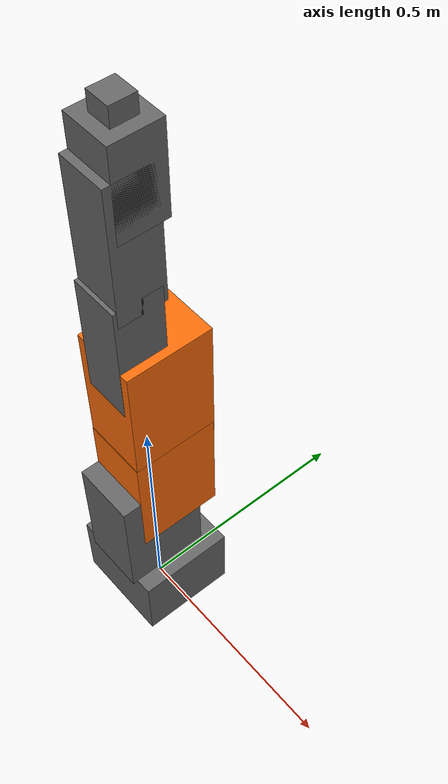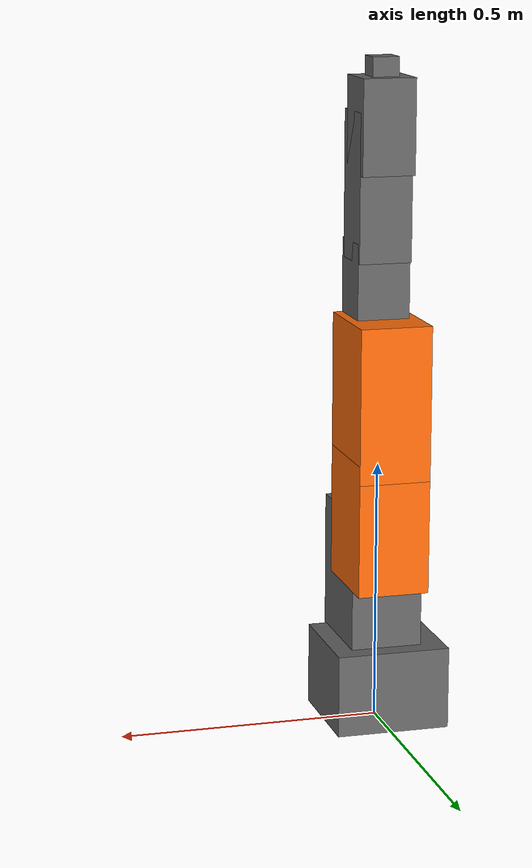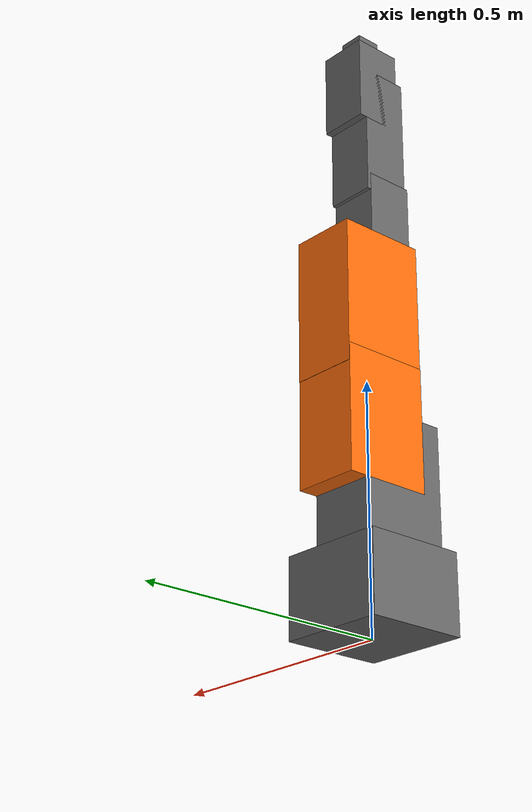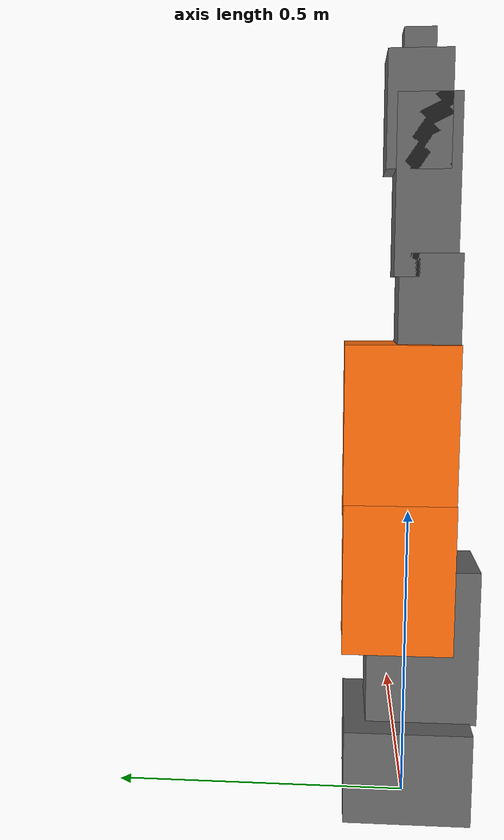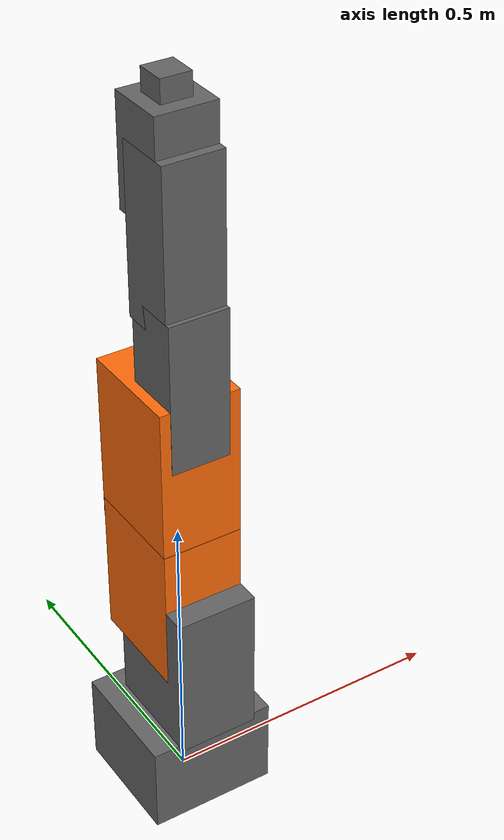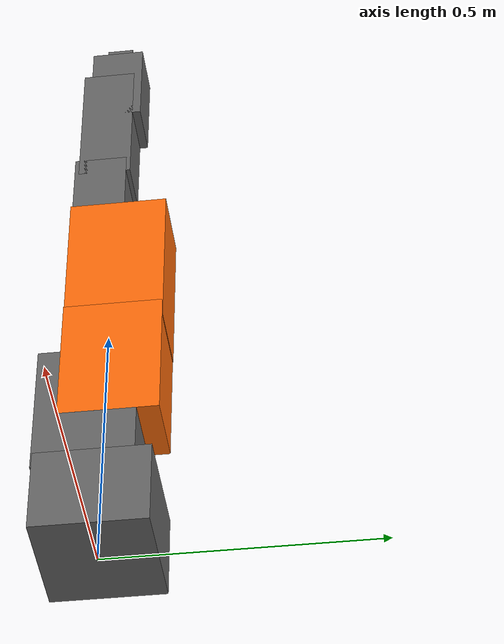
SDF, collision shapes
<?xml version="1.0"?>
<sdf version="1.7">
  <model name="iiwa7_twoDOF">
    <link name="iiwa_twoDOF_link_0">
      <inertial>
        <pose>-0.013 0 0.07 0 0 0</pose>
        <mass>3.863</mass>
        <inertia>
          <ixx>0.0141</ixx>
          <ixy>0</ixy>
          <ixz>0</ixz>
          <iyy>0.0171</iyy>
          <iyz>0</iyz>
          <izz>0.0178</izz>
        </inertia>
      </inertial>
      <visual name="iiwa_twoDOF_link_0_visual">
        <geometry>
          <mesh>
            <scale>1 1 1</scale>
            <uri>package://iris_environments/models/iiwa_description/iiwa7/link_0.obj</uri>
          </mesh>
        </geometry>
        <material>
          <diffuse>0.4 0.4 0.4 1.0</diffuse>
        </material>
      </visual>
      <collision name="iiwa_twoDOF_link_0_collision">
        <pose>-0.004563 0 0.07875 0 0 0</pose>
        <geometry>
          <box>
            <size>0.216874 0.207874 0.1575</size>
          </box>
        </geometry>
      </collision>
      <gravity>1</gravity>
    </link>
    <link name="iiwa_twoDOF_link_1">
      <pose>0 0 0.1575 0 0 0</pose>
      <inertial>
        <pose>0 -0.0347 0.113 0 0 0</pose>
        <mass>2.7025</mass>
        <inertia>
          <ixx>0.0171</ixx>
          <ixy>0</ixy>
          <ixz>0</ixz>
          <iyy>0.0163</iyy>
          <iyz>0</iyz>
          <izz>0.006</izz>
        </inertia>
      </inertial>
      <visual name="iiwa_twoDOF_link_1_visual">
        <geometry>
          <mesh>
            <scale>1 1 1</scale>
            <uri>package://iris_environments/models/iiwa_description/iiwa7/link_1.obj</uri>
          </mesh>
        </geometry>
        <material>
          <diffuse>0.4 0.4 0.4 1.0</diffuse>
        </material>
      </visual>
      <collision name="iiwa_twoDOF_link_1_collision">
        <pose>0 -0.023301 0.127997 0 0 0</pose>
        <geometry>
          <box>
            <size>0.13596 0.182584 0.260995</size>
          </box>
        </geometry>
      </collision>
      <gravity>1</gravity>
    </link>
    <joint name="iiwa_joint_1" type="fixed">
      <child>iiwa_twoDOF_link_1</child>
      <parent>iiwa_twoDOF_link_0</parent>
      <axis>
        <xyz expressed_in="__model__">0 0 1</xyz>
        <limit>
          <lower>-2.96706</lower>
          <upper>2.96706</upper>
          <effort>300</effort>
          <velocity>10</velocity>
        </limit>
        <dynamics>
          <damping>0.0</damping>
          <friction>0</friction>
          <spring_reference>0</spring_reference>
          <spring_stiffness>0</spring_stiffness>
        </dynamics>
      </axis>
    </joint>
    <link name="iiwa_twoDOF_link_2">
      <pose>0 0 0.3405 1.5708 0 -3.14159</pose>
      <inertial>
        <pose>0.000 0.0668 0.0344 0 0 0</pose>
        <mass>2.7258</mass>
        <inertia>
          <ixx>0.0170</ixx>
          <ixy>0</ixy>
          <ixz>0</ixz>
          <iyy>0.0162</iyy>
          <iyz>0</iyz>
          <izz>0.0061</izz>
        </inertia>
      </inertial>
      <visual name="iiwa_twoDOF_link_2_visual">
        <geometry>
          <mesh>
            <scale>1 1 1</scale>
            <uri>package://iris_environments/models/iiwa_description/iiwa7/link_2.obj</uri>
          </mesh>
        </geometry>
        <material>
          <diffuse>1.0 0.423529411765 0.0392156862745 1.0</diffuse>
        </material>
      </visual>
      <collision name="iiwa_twoDOF_link_2_collision">
        <pose>0 0.0580045 0.0173035 0 0 0</pose>
        <geometry>
          <box>
            <size>0.135988 0.251991 0.182605</size>
          </box>
        </geometry>
      </collision>
      <gravity>1</gravity>
    </link>
    <joint name="iiwa_joint_2" type="revolute">
      <child>iiwa_twoDOF_link_2</child>
      <parent>iiwa_twoDOF_link_1</parent>
      <axis>
        <xyz expressed_in="__model__">-0 1 0</xyz>
        <limit>
          <lower>-2.0944</lower>
          <upper>2.0944</upper>
          <effort>300</effort>
          <velocity>10</velocity>
        </limit>
        <dynamics>
          <damping>0</damping>
          <friction>0</friction>
          <spring_reference>0</spring_reference>
          <spring_stiffness>0</spring_stiffness>
        </dynamics>
      </axis>
    </joint>
    <link name="iiwa_twoDOF_link_3">
      <pose>0 0 0.5245 0 0 0</pose>
      <inertial>
        <pose>0 0.0296 0.1265 0 0 0</pose>
        <mass>3.175</mass>
        <inertia>
          <ixx>0.025</ixx>
          <ixy>0</ixy>
          <ixz>0</ixz>
          <iyy>0.0238</iyy>
          <iyz>0</iyz>
          <izz>0.0076</izz>
        </inertia>
      </inertial>
      <visual name="iiwa_twoDOF_link_3_visual">
        <geometry>
          <mesh>
            <scale>1 1 1</scale>
            <uri>package://iris_environments/models/iiwa_description/iiwa7/link_3.obj</uri>
          </mesh>
        </geometry>
        <material>
          <diffuse>1.0 0.423529411765 0.0392156862745 1.0</diffuse>
        </material>
      </visual>
      <collision name="iiwa_twoDOF_link_3_collision">
        <pose>0 0.0182965 0.11073 0 0 0</pose>
        <geometry>
          <box>
            <size>0.135987 0.182593 0.29346</size>
          </box>
        </geometry>
      </collision>
      <gravity>1</gravity>
    </link>
    <joint name="iiwa_joint_3" type="fixed">
      <child>iiwa_twoDOF_link_3</child>
      <parent>iiwa_twoDOF_link_2</parent>
      <axis>
        <xyz expressed_in="__model__">0 0 1</xyz>
        <limit>
          <lower>-2.96706</lower>
          <upper>2.96706</upper>
          <effort>300</effort>
          <velocity>10</velocity>
        </limit>
        <dynamics>
          <damping>0</damping>
          <friction>0</friction>
          <spring_reference>0</spring_reference>
          <spring_stiffness>0</spring_stiffness>
        </dynamics>
      </axis>
    </joint>
    <link name="iiwa_twoDOF_link_4">
      <pose>0 0 0.74 1.5708 0 0</pose>
      <inertial>
        <pose>0 0.067 0.034 0 0 0</pose>
        <mass>2.73</mass>
        <inertia>
          <ixx>0.017</ixx>
          <ixy>0</ixy>
          <ixz>0</ixz>
          <iyy>0.0162</iyy>
          <iyz>0</iyz>
          <izz>0.0061</izz>
        </inertia>
      </inertial>
      <visual name="iiwa_twoDOF_link_4_visual">
        <geometry>
          <mesh>
            <scale>1 1 1</scale>
            <uri>package://iris_environments/models/iiwa_description/iiwa7/link_4.obj</uri>
          </mesh>
        </geometry>
        <material>
          <diffuse>0.4 0.4 0.4 1.0</diffuse>
        </material>
      </visual>
      <collision name="iiwa_twoDOF_link_4_collision">
        <pose>0 0.0580045 0.0233035 0 0 0</pose>
        <geometry>
          <box>
            <size>0.1 0.251991 0.1</size>
          </box>
        </geometry>
      </collision>
      <gravity>1</gravity>
    </link>
    <joint name="iiwa_joint_4" type="revolute">
      <child>iiwa_twoDOF_link_4</child>
      <parent>iiwa_twoDOF_link_3</parent>
      <axis>
        <xyz expressed_in="__model__">0 -1 0</xyz>
        <limit>
          <lower>-2.0944</lower>
          <upper>2.0944</upper>
          <effort>300</effort>
          <velocity>10</velocity>
        </limit>
        <dynamics>
          <damping>0</damping>
          <friction>0</friction>
          <spring_reference>0</spring_reference>
          <spring_stiffness>0</spring_stiffness>
        </dynamics>
      </axis>
    </joint>
    <link name="iiwa_twoDOF_link_5">
      <pose>0 0 0.924 0 0 -3.14159</pose>
      <inertial>
        <pose>0.0001 0.021 0.076 0 0 0</pose>
        <mass>1.69</mass>
        <inertia>
          <ixx>0.01</ixx>
          <ixy>0</ixy>
          <ixz>0</ixz>
          <iyy>0.0087</iyy>
          <iyz>0</iyz>
          <izz>0.00449</izz>
        </inertia>
      </inertial>
      <visual name="iiwa_twoDOF_link_5_visual">
        <geometry>
          <mesh>
            <scale>1 1 1</scale>
            <uri>package://iris_environments/models/iiwa_description/iiwa7/link_5.obj</uri>
          </mesh>
        </geometry>
        <material>
          <diffuse>0.4 0.4 0.4 1.0</diffuse>
        </material>
      </visual>
      <collision name="iiwa_twoDOF_link_5_collision">
        <pose>0 0.015546 0.102458 0 0 0</pose>
        <geometry>
          <box>
            <size>0.10 0.10 0.276916</size>
          </box>
        </geometry>
      </collision>
      <gravity>1</gravity>
    </link>
    <joint name="iiwa_joint_5" type="fixed">
      <child>iiwa_twoDOF_link_5</child>
      <parent>iiwa_twoDOF_link_4</parent>
      <axis>
        <xyz expressed_in="__model__">0 0 1</xyz>
        <limit>
          <lower>-2.96706</lower>
          <upper>2.96706</upper>
          <effort>300</effort>
          <velocity>10</velocity>
        </limit>
        <dynamics>
          <damping>0</damping>
          <friction>0</friction>
          <spring_reference>0</spring_reference>
          <spring_stiffness>0</spring_stiffness>
        </dynamics>
      </axis>
    </joint>
    <link name="iiwa_twoDOF_link_6">
      <pose>0 0 1.1395 1.5708 0 -3.14159</pose>
      <inertial>
        <pose>0 0.0026 0.0005 0 0 0</pose>
        <mass>1.8</mass>
        <inertia>
          <ixx>0.0051</ixx>
          <ixy>0</ixy>
          <ixz>0</ixz>
          <iyy>0.0049</iyy>
          <iyz>0</iyz>
          <izz>0.0035</izz>
        </inertia>
      </inertial>
      <visual name="iiwa_twoDOF_link_6_visual">
        <pose>0 0 -0.060700 0 0 0</pose>
        <geometry>
          <mesh>
            <scale>1 1 1</scale>
            <uri>package://iris_environments/models/iiwa_description/iiwa7/link_6.obj</uri>
          </mesh>
        </geometry>
        <material>
          <diffuse>0.4 0.4 0.4 1.0</diffuse>
        </material>
      </visual>
      <collision name="iiwa_twoDOF_link_6_collision">
        <geometry>
          <box>
            <size>0.10 0.177387 0.10</size>
          </box>
        </geometry>
      </collision>
      <gravity>1</gravity>
    </link>
    <joint name="iiwa_joint_6" type="fixed">
      <child>iiwa_twoDOF_link_6</child>
      <parent>iiwa_twoDOF_link_5</parent>
      <axis>
        <xyz expressed_in="__model__">-0 1 -0</xyz>
        <limit>
          <lower>-2.0944</lower>
          <upper>2.0944</upper>
          <effort>300</effort>
          <velocity>10</velocity>
        </limit>
        <dynamics>
          <damping>0</damping>
          <friction>0</friction>
          <spring_reference>0</spring_reference>
          <spring_stiffness>0</spring_stiffness>
        </dynamics>
      </axis>
    </joint>
    <link name="iiwa_twoDOF_link_7">
      <pose>0 0 1.22 0 0 0</pose>
      <inertial>
        <pose>0 0 0.0294 0 0 0</pose>
        <mass>.4</mass>
        <inertia>
          <ixx>0.0004</ixx>
          <ixy>0</ixy>
          <ixz>0</ixz>
          <iyy>0.0004</iyy>
          <iyz>0</iyz>
          <izz>0.0005</izz>
        </inertia>
      </inertial>
      <visual name="iiwa_twoDOF_link_7_visual">
        <geometry>
          <mesh>
            <scale>1 1 1</scale>
            <uri>package://iris_environments/models/iiwa_description/iiwa7/link_7.obj</uri>
          </mesh>
        </geometry>
        <material>
          <diffuse>0.4 0.4 0.4 1.0</diffuse>
        </material>
      </visual>
      <collision name="iiwa_twoDOF_link_7_collision">
        <pose>0 0 0.021997 0 0 0</pose>
        <geometry>
          <box>
            <size>0.05 0.05 0.045</size>
          </box>
        </geometry>
      </collision>
      <gravity>1</gravity>
    </link>
    <joint name="iiwa_joint_7" type="fixed">
      <child>iiwa_twoDOF_link_7</child>
      <parent>iiwa_twoDOF_link_6</parent>
      <axis>
        <xyz expressed_in="__model__">0 0 1</xyz>
        <limit>
          <lower>-3.05433</lower>
          <upper>3.05433</upper>
          <effort>300</effort>
          <velocity>10</velocity>
        </limit>
        <dynamics>
          <damping>0</damping>
          <friction>0</friction>
          <spring_reference>0</spring_reference>
          <spring_stiffness>0</spring_stiffness>
        </dynamics>
      </axis>
    </joint>
    <static>0</static>
  </model>
</sdf>
